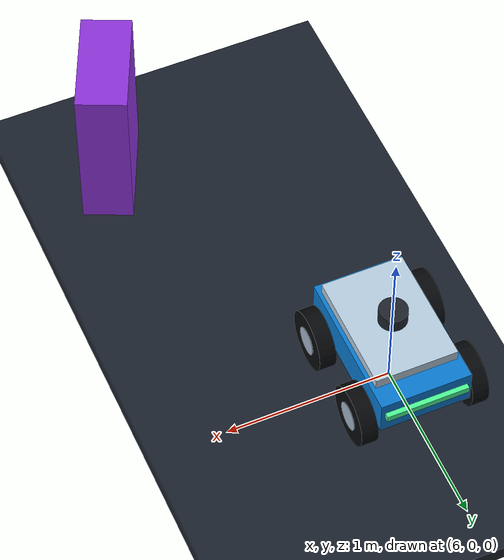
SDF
<sdf version="1.9">
 <world name="loop_course">
  <model name="ground">
   <static>true</static>
   <link name="ground">
    <collision name="ground_collision">
     <pose>0 0 -0.05 0 0 0</pose>
     <geometry><box><size>30 30 0.1</size></box></geometry>
    </collision>
    <visual name="ground_visual">
     <pose>0 0 -0.05 0 0 0</pose>
     <geometry><box><size>30 30 0.1</size></box></geometry>
     <material><ambient>0.105 0.13 0.17 1</ambient><diffuse>0.105 0.13 0.17 1</diffuse></material>
    </visual>
   </link>
  </model>
  <model name="loop_cart">
   <pose>6 0 .18 0 0 1.5707963267948966</pose>
   <link name="base_link">
    <inertial>
     <mass>12</mass>
     <inertia><ixx>0.45</ixx><iyy>0.95</iyy><izz>1.2</izz><ixy>0</ixy><ixz>0</ixz><iyz>0</iyz></inertia>
    </inertial>
    <collision name="body_collision">
     <pose>0 0 0.13 0 0 0</pose>
     <geometry><box><size>0.9 0.55 0.22</size></box></geometry>
    </collision>
    <visual name="body_visual">
     <pose>0 0 0.13 0 0 0</pose>
     <geometry><box><size>0.9 0.55 0.22</size></box></geometry>
     <material><ambient>0.04 0.48 0.82 1</ambient><diffuse>0.04 0.48 0.82 1</diffuse></material>
    </visual>
    <visual name="deck">
     <pose>-0.04 0 0.27 0 0 0</pose>
     <geometry><box><size>0.72 0.5 0.07</size></box></geometry>
     <material><ambient>0.72 0.81 0.88 1</ambient><diffuse>0.72 0.81 0.88 1</diffuse></material>
    </visual>
    <visual name="front_stripe">
     <pose>0.46 0 0.15 0 0 0</pose>
     <geometry><box><size>0.04 0.5 0.04</size></box></geometry>
     <material><ambient>0.3 1 0.6 1</ambient><diffuse>0.3 1 0.6 1</diffuse></material>
    </visual>
    <visual name="lidar_visual">
     <pose>0 0 0.39 0 0 0</pose>
     <geometry><cylinder><radius>0.085</radius><length>0.09</length></cylinder></geometry>
     <material><ambient>0.12 0.14 0.17 1</ambient><diffuse>0.12 0.14 0.17 1</diffuse></material>
    </visual>
    <sensor name="body_contact" type="contact">
     <always_on>true</always_on>
     <update_rate>20</update_rate>
     <topic>/loop/contacts/body</topic>
     <contact><collision>body_collision</collision></contact>
    </sensor>
    <sensor name="imu" type="imu">
     <always_on>true</always_on>
     <update_rate>100</update_rate>
     <topic>/loop/imu</topic>
     <gz_frame_id>loop_cart/base_link</gz_frame_id>
    </sensor>
    <sensor name="lidar" type="gpu_lidar">
     <pose>0 0 0.44 0 0 0</pose>
     <topic>/loop/scan</topic>
     <gz_frame_id>loop_cart/lidar</gz_frame_id>
     <update_rate>20</update_rate>
     <always_on>true</always_on>
     <visualize>false</visualize>
     <lidar>
      <scan>
       <horizontal>
        <samples>720</samples>
        <resolution>1</resolution>
        <min_angle>-3.141592653589793</min_angle>
        <max_angle>3.141592653589793</max_angle>
       </horizontal>
      </scan>
      <range><min>0.06</min><max>35</max><resolution>0.005</resolution></range>
     </lidar>
    </sensor>
   </link>
   <link name="front_left">
    <pose>0.28 0.34 0 -1.5707963267948966 0 0</pose>
    <inertial>
     <mass>0.7</mass>
     <inertia><ixx>0.005</ixx><iyy>0.005</iyy><izz>0.009</izz><ixy>0</ixy><ixz>0</ixz><iyz>0</iyz></inertia>
    </inertial>
    <collision name="front_left_collision">
     <geometry><cylinder><radius>0.18</radius><length>0.1</length></cylinder></geometry>
     <surface><friction><ode><mu>1.0</mu><mu2>0.08</mu2><fdir1>1 0 0</fdir1></ode></friction></surface>
    </collision>
    <visual name="front_left_tire">
     <geometry><cylinder><radius>0.18</radius><length>0.1</length></cylinder></geometry>
     <material><ambient>0.025 0.03 0.04 1</ambient><diffuse>0.025 0.03 0.04 1</diffuse></material>
    </visual>
    <visual name="front_left_hub">
     <geometry><cylinder><radius>0.085</radius><length>0.108</length></cylinder></geometry>
     <material><ambient>0.65 0.72 0.8 1</ambient><diffuse>0.65 0.72 0.8 1</diffuse></material>
    </visual>
    <sensor name="front_left_contact" type="contact">
     <always_on>true</always_on>
     <update_rate>20</update_rate>
     <topic>/loop/contacts/front_left</topic>
     <contact><collision>front_left_collision</collision></contact>
    </sensor>
   </link>
   <joint name="front_left_joint" type="revolute">
    <parent>base_link</parent>
    <child>front_left</child>
    <axis>
     <xyz expressed_in="__model__">0 1 0</xyz>
     <limit><lower>-1e+16</lower><upper>1e+16</upper><effort>30</effort><velocity>30</velocity></limit>
    </axis>
   </joint>
   <link name="rear_left">
    <pose>-0.28 0.34 0 -1.5707963267948966 0 0</pose>
    <inertial>
     <mass>0.7</mass>
     <inertia><ixx>0.005</ixx><iyy>0.005</iyy><izz>0.009</izz><ixy>0</ixy><ixz>0</ixz><iyz>0</iyz></inertia>
    </inertial>
    <collision name="rear_left_collision">
     <geometry><cylinder><radius>0.18</radius><length>0.1</length></cylinder></geometry>
     <surface><friction><ode><mu>1.0</mu><mu2>0.08</mu2><fdir1>1 0 0</fdir1></ode></friction></surface>
    </collision>
    <visual name="rear_left_tire">
     <geometry><cylinder><radius>0.18</radius><length>0.1</length></cylinder></geometry>
     <material><ambient>0.025 0.03 0.04 1</ambient><diffuse>0.025 0.03 0.04 1</diffuse></material>
    </visual>
    <visual name="rear_left_hub">
     <geometry><cylinder><radius>0.085</radius><length>0.108</length></cylinder></geometry>
     <material><ambient>0.65 0.72 0.8 1</ambient><diffuse>0.65 0.72 0.8 1</diffuse></material>
    </visual>
    <sensor name="rear_left_contact" type="contact">
     <always_on>true</always_on>
     <update_rate>20</update_rate>
     <topic>/loop/contacts/rear_left</topic>
     <contact><collision>rear_left_collision</collision></contact>
    </sensor>
   </link>
   <joint name="rear_left_joint" type="revolute">
    <parent>base_link</parent>
    <child>rear_left</child>
    <axis>
     <xyz expressed_in="__model__">0 1 0</xyz>
     <limit><lower>-1e+16</lower><upper>1e+16</upper><effort>30</effort><velocity>30</velocity></limit>
    </axis>
   </joint>
   <link name="front_right">
    <pose>0.28 -0.34 0 -1.5707963267948966 0 0</pose>
    <inertial>
     <mass>0.7</mass>
     <inertia><ixx>0.005</ixx><iyy>0.005</iyy><izz>0.009</izz><ixy>0</ixy><ixz>0</ixz><iyz>0</iyz></inertia>
    </inertial>
    <collision name="front_right_collision">
     <geometry><cylinder><radius>0.18</radius><length>0.1</length></cylinder></geometry>
     <surface><friction><ode><mu>1.0</mu><mu2>0.08</mu2><fdir1>1 0 0</fdir1></ode></friction></surface>
    </collision>
    <visual name="front_right_tire">
     <geometry><cylinder><radius>0.18</radius><length>0.1</length></cylinder></geometry>
     <material><ambient>0.025 0.03 0.04 1</ambient><diffuse>0.025 0.03 0.04 1</diffuse></material>
    </visual>
    <visual name="front_right_hub">
     <geometry><cylinder><radius>0.085</radius><length>0.108</length></cylinder></geometry>
     <material><ambient>0.65 0.72 0.8 1</ambient><diffuse>0.65 0.72 0.8 1</diffuse></material>
    </visual>
    <sensor name="front_right_contact" type="contact">
     <always_on>true</always_on>
     <update_rate>20</update_rate>
     <topic>/loop/contacts/front_right</topic>
     <contact><collision>front_right_collision</collision></contact>
    </sensor>
   </link>
   <joint name="front_right_joint" type="revolute">
    <parent>base_link</parent>
    <child>front_right</child>
    <axis>
     <xyz expressed_in="__model__">0 1 0</xyz>
     <limit><lower>-1e+16</lower><upper>1e+16</upper><effort>30</effort><velocity>30</velocity></limit>
    </axis>
   </joint>
   <link name="rear_right">
    <pose>-0.28 -0.34 0 -1.5707963267948966 0 0</pose>
    <inertial>
     <mass>0.7</mass>
     <inertia><ixx>0.005</ixx><iyy>0.005</iyy><izz>0.009</izz><ixy>0</ixy><ixz>0</ixz><iyz>0</iyz></inertia>
    </inertial>
    <collision name="rear_right_collision">
     <geometry><cylinder><radius>0.18</radius><length>0.1</length></cylinder></geometry>
     <surface><friction><ode><mu>1.0</mu><mu2>0.08</mu2><fdir1>1 0 0</fdir1></ode></friction></surface>
    </collision>
    <visual name="rear_right_tire">
     <geometry><cylinder><radius>0.18</radius><length>0.1</length></cylinder></geometry>
     <material><ambient>0.025 0.03 0.04 1</ambient><diffuse>0.025 0.03 0.04 1</diffuse></material>
    </visual>
    <visual name="rear_right_hub">
     <geometry><cylinder><radius>0.085</radius><length>0.108</length></cylinder></geometry>
     <material><ambient>0.65 0.72 0.8 1</ambient><diffuse>0.65 0.72 0.8 1</diffuse></material>
    </visual>
    <sensor name="rear_right_contact" type="contact">
     <always_on>true</always_on>
     <update_rate>20</update_rate>
     <topic>/loop/contacts/rear_right</topic>
     <contact><collision>rear_right_collision</collision></contact>
    </sensor>
   </link>
   <joint name="rear_right_joint" type="revolute">
    <parent>base_link</parent>
    <child>rear_right</child>
    <axis>
     <xyz expressed_in="__model__">0 1 0</xyz>
     <limit><lower>-1e+16</lower><upper>1e+16</upper><effort>30</effort><velocity>30</velocity></limit>
    </axis>
   </joint>
   <plugin filename="gz-sim-diff-drive-system" name="gz::sim::systems::DiffDrive">
    <left_joint>front_left_joint</left_joint>
    <left_joint>rear_left_joint</left_joint>
    <right_joint>front_right_joint</right_joint>
    <right_joint>rear_right_joint</right_joint>
    <wheel_separation>0.68</wheel_separation>
    <wheel_radius>0.18</wheel_radius>
    <topic>/loop/cmd_vel</topic>
    <odom_topic>/loop/wheel_odom</odom_topic>
    <tf_topic>/loop/wheel_tf</tf_topic>
    <frame_id>wheel_odom</frame_id>
    <child_frame_id>loop_cart/base_link</child_frame_id>
    <max_linear_velocity>1.5</max_linear_velocity>
    <min_linear_velocity>-0.8</min_linear_velocity>
    <max_angular_velocity>1.5</max_angular_velocity>
    <min_angular_velocity>-1.5</min_angular_velocity>
    <max_linear_acceleration>1.2</max_linear_acceleration>
    <min_linear_acceleration>-2.5</min_linear_acceleration>
    <max_angular_acceleration>2.5</max_angular_acceleration>
    <min_angular_acceleration>-2.5</min_angular_acceleration>
   </plugin>
   <plugin filename="gz-sim-odometry-publisher-system" name="gz::sim::systems::OdometryPublisher">
    <odom_topic>/loop/ground_truth</odom_topic>
    <tf_topic>/loop/tf</tf_topic>
    <odom_frame>world</odom_frame>
    <robot_base_frame>loop_cart/base_link</robot_base_frame>
    <dimensions>3</dimensions>
    <odom_publish_frequency>30</odom_publish_frequency>
   </plugin>
  </model>
  <model name="obstacle_localization_0">
   <static>true</static>
   <pose>6.904389439428234 -2.00595217361439 .5 0 0 1.1427275887558737</pose>
   <link name="landmark">
    <collision name="marker"><geometry><box><size>0.65 0.3 1</size></box></geometry></collision>
    <visual name="marker_visual">
     <geometry><box><size>0.65 0.3 1</size></box></geometry>
     <material><ambient>.55 .2 .85 1</ambient><diffuse>.55 .2 .85 1</diffuse></material>
    </visual>
   </link>
  </model>
 </world>
</sdf>
